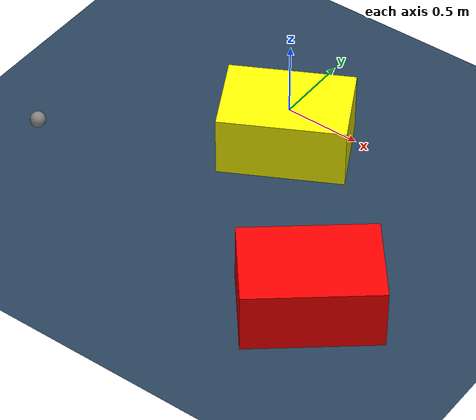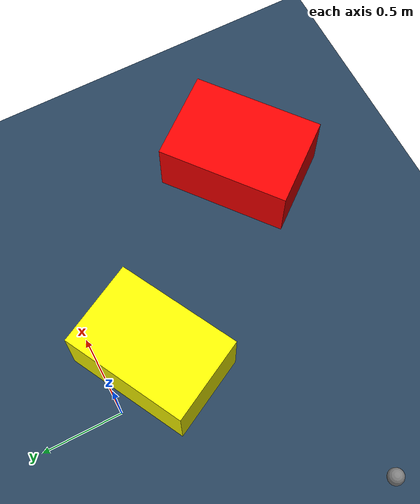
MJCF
<?xml version="1.0" ?>
<mujoco model="generated_environment">
  <option timestep="0.01" integrator="RK4" cone="elliptic"/>
  <default>
    <geom density="1"/>
  </default>
  <asset>
    <texture builtin="gradient" height="3072" rgb1="0.3 0.5 0.7" rgb2="0 0 0" type="skybox" width="512"/>
    <texture builtin="checker" height="300" mark="edge" markrgb="0.8 0.8 0.8" name="groundplane" rgb1="0.2 0.3 0.4" rgb2="0.1 0.2 0.3" type="2d" width="300"/>
    <material name="groundplane" reflectance="0.2" texrepeat="5 5" texture="groundplane" texuniform="true"/>
    <material name="robot" rgba="0.0 1.0 0.0 1"/>
  </asset>
  <worldbody>
    <light dir="0 0 -1" directional="true" pos="0 0 1.5"/>
    <geom condim="4" friction="1.0 0.005 0.001" material="groundplane" name="floor" size="0 0 0.05" type="plane"/>
    <body name="walls"/>
    <body name="robot">
      <joint name="joint_x" type="slide" pos="0 0 0" axis="1 0 0"/>
      <joint name="joint_y" type="slide" pos="0 0 0" axis="0 1 0"/>
      <geom name="robot" type="sphere" pos="-1.0559907298395521 -1.1690317899679803 0.2" size="0.05" mass="5." friction="1.0 0.005 0.0001" condim="4"/>
      <site name="sensor_ball"/>
    </body>
    <body name="obstacle_1_movable">
      <geom name="obstacle_1_movable" condim="4" pos="0.19161601495543246 -0.30862565170093603 0.2" euler="0 0 117.6459792173877" friction="1.0 0.005 0.001" rgba="1 1 0 1" size="0.26948978909941695 0.3953478661356562 0.2" type="box" mass="0.1"/>
      <joint type="free"/>
    </body>
    <body name="obstacle_2_static">
      <geom name="obstacle_2_static" condim="4" pos="1.1050589315276556 -1.3652905789844654 0.2" euler="0 0 128.55721726447806" friction="1.0 0.005 0.001" rgba="1 0 0 1" size="0.28844684388820907 0.41589783581867346 0.2" type="box"/>
    </body>
  </worldbody>
  <actuator>
    <motor name="actuator_x" joint="joint_x" gear="1" ctrlrange="-1 1"/>
    <motor name="actuator_y" joint="joint_y" gear="1" ctrlrange="-1 1"/>
  </actuator>
</mujoco>
